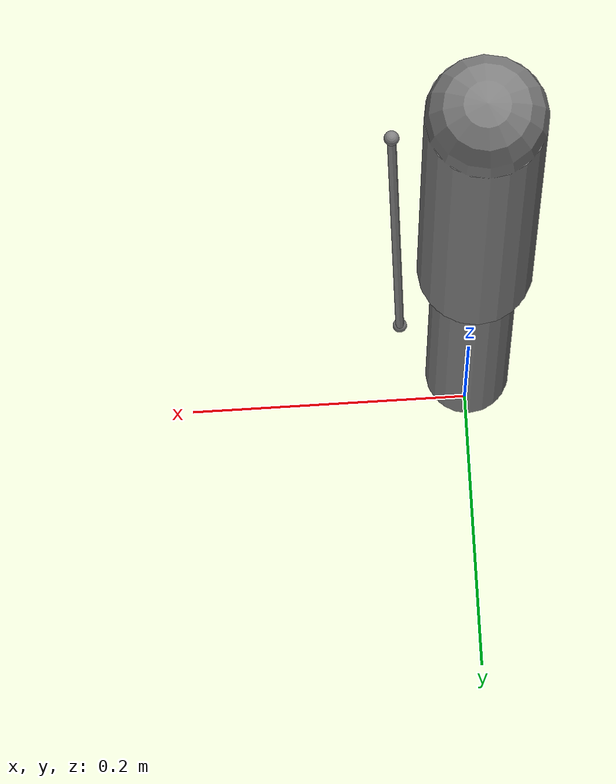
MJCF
<mujoco model="tendon-actuator">
  <option gravity="0 0 0" timestep="0.002"/>
  <compiler angle="radian"/>
  <worldbody>
    <body name="upper" pos="0 0 1">
      <joint name="shoulder" type="hinge" axis="0 1 0"/>
      <geom type="capsule" size="0.04" fromto="0 0 0 0 0 -0.5" mass="1.0"/>
      <site name="s1" pos="0.06 0 -0.05"/>
      <body name="lower" pos="0 0 -0.5">
        <joint name="elbow" type="hinge" axis="0 1 0"/>
        <geom type="capsule" size="0.03" fromto="0 0 0 0 0 -0.4" mass="0.5"/>
        <site name="s2" pos="0.05 0 -0.2"/>
      </body>
    </body>
  </worldbody>
  <tendon>
    <spatial name="t1">
      <site site="s1"/>
      <site site="s2"/>
    </spatial>
  </tendon>
  <actuator>
    <motor name="a1" tendon="t1" gear="50"/>
  </actuator>
</mujoco>
